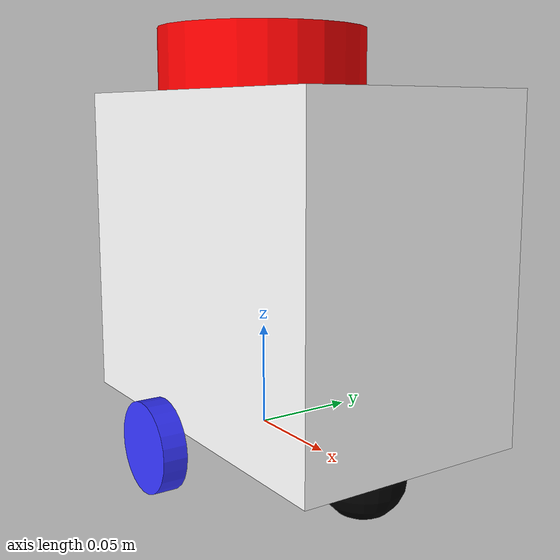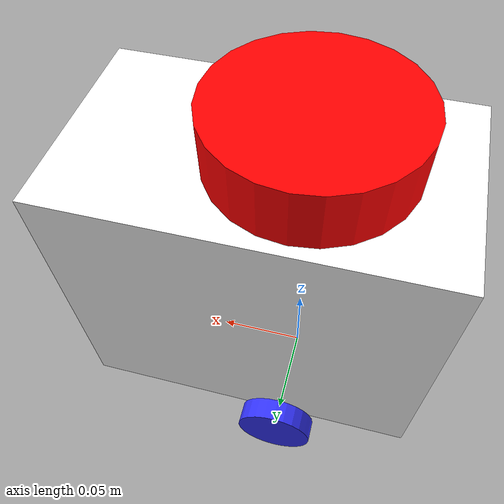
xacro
<?xml version="1.0"?>
<robot xmlns:xacro="http://www.ros.org/wiki/xacro"  name="artebot">
    <xacro:arg name="use_ros2_control" default="true"/>
    <xacro:include filename="robot_core.xacro" />
    <xacro:include filename="lidar.xacro" />
    <xacro:if value="$(arg use_ros2_control)">
        <xacro:include filename="ros2_control.xacro" />
    </xacro:if>
    <xacro:unless value="$(arg use_ros2_control)">
        <xacro:include filename="gazebo_control.xacro" />
    </xacro:unless>
</robot>

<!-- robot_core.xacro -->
<robot xmlns:xacro="http://www.ros.org/wiki/xacro">
    <xacro:include filename="inertial_macros.xacro"/>
    <xacro:include filename="colours.xacro" />

     <!-- BASE LINK -->

    <link name="base_link">
    </link>

    <!-- CHASSIS LINK -->

    <joint name="chassis_joint" type="fixed">
        <parent link="base_link"/>
        <child link="chassis"/>
        <origin xyz="-0.1 0 0"/>
    </joint>

    <link name="chassis">
        <visual>
            <origin xyz="0.12 0 0.088"/>
            <geometry>
                <box size="0.19 0.111 0.155"/>
            </geometry>
            <material name="white"/>
        </visual>
        <collision>
            <origin xyz="0.12 0 0.088"/>
            <geometry>
                <box size="0.19 0.111 0.155"/>
            </geometry>
        </collision>
        <xacro:inertial_box mass="0.5" x="0.19" y="0.111" z="0.155">
            <origin xyz="0.12 0 0.088" rpy="0 0 0"/>
        </xacro:inertial_box>
    </link>

    <gazebo reference="chassis">
        <material>Gazebo/White</material>
    </gazebo>

    <!-- LEFT WHEEL LINK -->

    <joint name="left_wheel_joint" type="continuous">
        <parent link="base_link"/>
        <child link="left_wheel"/>
        <origin xyz="0 0.0615 0" rpy="-${pi/2} 0 0" />
        <axis xyz="0 0 1"/>
    </joint>

    <link name="left_wheel">
        <visual>
            <geometry>
                <cylinder radius="0.022" length="0.012"/>
            </geometry>
            <material name="blue"/>
        </visual>
        <collision>
            <geometry>
                <sphere radius="0.022"/>
            </geometry>
        </collision>
        <xacro:inertial_cylinder mass="0.1" length="0.012" radius="0.022">
            <origin xyz="0 0 0" rpy="0 0 0"/>
        </xacro:inertial_cylinder>
    </link>

    <gazebo reference="left_wheel">
        <material>Gazebo/Blue</material>
    </gazebo>

    <!-- RIGHT WHEEL LINK -->

    <joint name="right_wheel_joint" type="continuous">
        <parent link="base_link"/>
        <child link="right_wheel"/>
        <origin xyz="0 -0.0615 0" rpy="${pi/2} 0 0" />
        <axis xyz="0 0 -1"/>
    </joint>

    <link name="right_wheel">
        <visual>
            <geometry>
                <cylinder radius="0.022" length="0.012"/>
            </geometry>
            <material name="blue"/>
        </visual>
        <collision>
            <geometry>
                <sphere radius="0.022"/>
            </geometry>
        </collision>
        <xacro:inertial_cylinder mass="0.1" length="0.012" radius="0.022">
            <origin xyz="0 0 0" rpy="0 0 0"/>
        </xacro:inertial_cylinder>
    </link>

    <gazebo reference="right_wheel">
        <material>Gazebo/Blue</material>
    </gazebo>

    <!-- CASTER WHEEL LINK -->

    <joint name="caster_wheel_joint" type="fixed">
        <parent link="chassis"/>
        <child link="caster_wheel"/>
        <origin xyz="0.18 0 0"/>
    </joint>

    <link name="caster_wheel">
        <visual>
            <geometry>
                <sphere radius="0.02"/>
            </geometry>
            <material name="black"/>
        </visual>
        <collision>
            <geometry>
                <sphere radius="0.02"/>
            </geometry>
        </collision>
        <xacro:inertial_sphere mass="0.1" radius="0.02">
            <origin xyz="0 0 0" rpy="0 0 0"/>
        </xacro:inertial_sphere>
    </link>

    <gazebo reference="caster_wheel">
        <material>Gazebo/Black</material>
        <mu1 value="0.001"/>
        <mu2 value="0.001"/>
    </gazebo>

    <!-- BACK CASTER WHEEL LINK -->

    <joint name="back_caster_wheel_joint" type="fixed">
        <parent link="chassis"/>
        <child link="back_caster_wheel"/>
        <origin xyz="0.06 0 0"/>
    </joint>

    <link name="back_caster_wheel">
        <visual>
            <geometry>
                <sphere radius="0.02"/>
            </geometry>
            <material name="black"/>
        </visual>
        <collision>
            <geometry>
                <sphere radius="0.02"/>
            </geometry>
        </collision>
        <xacro:inertial_sphere mass="0.1" radius="0.02">
            <origin xyz="0 0 0" rpy="0 0 0"/>
        </xacro:inertial_sphere>
    </link>

    <gazebo reference="back_caster_wheel">
        <material>Gazebo/Black</material>
        <mu1 value="0.001"/>
        <mu2 value="0.001"/>
    </gazebo>

    <gazebo>
        <plugin name="joint_state_publisher" filename="libgazebo_ros_joint_state_publisher.so">
            <jointName>left_wheel,right_wheel</jointName>
        </plugin>
    </gazebo>
</robot>

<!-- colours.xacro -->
<robot xmlns:xacro="http://www.ros.org/wiki/xacro">
    <material name="white">
        <color rgba="1 1 1 1" />
    </material>

    <material name="orange">
        <color rgba="1 0.3 0.1 1"/>
    </material>

    <material name="blue">
        <color rgba="0.2 0.2 1 1"/>
    </material>

    <material name="black">
        <color rgba="0 0 0 1"/>
    </material>

    <material name="red">
        <color rgba="1 0 0 1"/>
    </material>
</robot>

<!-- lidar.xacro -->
<robot xmlns:xacro="http://www.ros.org/wiki/xacro" >

    <joint name="laser_joint" type="fixed">
        <parent link="chassis"/>
        <child link="laser_frame"/>
        <origin xyz="0.1 0 0.175" rpy="0 0 0"/>
    </joint>

   <link name="laser_frame">
    <visual>
        <geometry>
            <cylinder radius="0.05" length="0.04"/>
        </geometry>
        <material name="red"/>
    </visual>
    <collision>
        <geometry>
            <cylinder radius="0.05" length="0.04"/>
        </geometry>
    </collision>

    <xacro:inertial_cylinder mass="0.1" length="0.04" radius="0.05">
        <origin xyz="0 0 0" rpy="0 0 0"/>
    </xacro:inertial_cylinder>
    </link>

    <gazebo reference="laser_frame">
        <material>Gazebo/Red</material>

        <sensor name="laser" type="ray">
            <pose> 0 0 0 0 0 0 </pose>
            <visualize>true</visualize>
            <update_rate>10</update_rate>
            <ray>
                <scan>
                    <horizontal>
                        <samples>360</samples>
                        <min_angle>-3.14</min_angle>
                        <max_angle>3.14</max_angle>
                    </horizontal>
                </scan>
                <range>
                    <min>0.3</min>
                    <max>12</max>
                </range>
            </ray>
            <plugin name="laser_controller" filename="libgazebo_ros_ray_sensor.so">
                <ros>
                    <argument>~/out:=scan</argument>
                </ros>
                <output_type>sensor_msgs/LaserScan</output_type>
                <frame_name>laser_frame</frame_name>
            </plugin>
        </sensor>
    </gazebo>
</robot>
